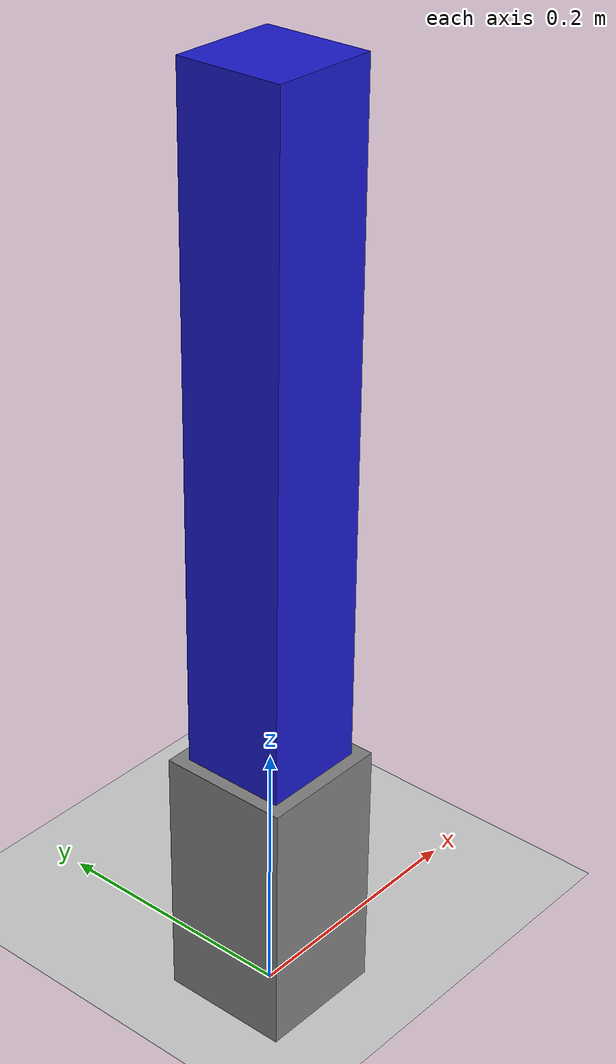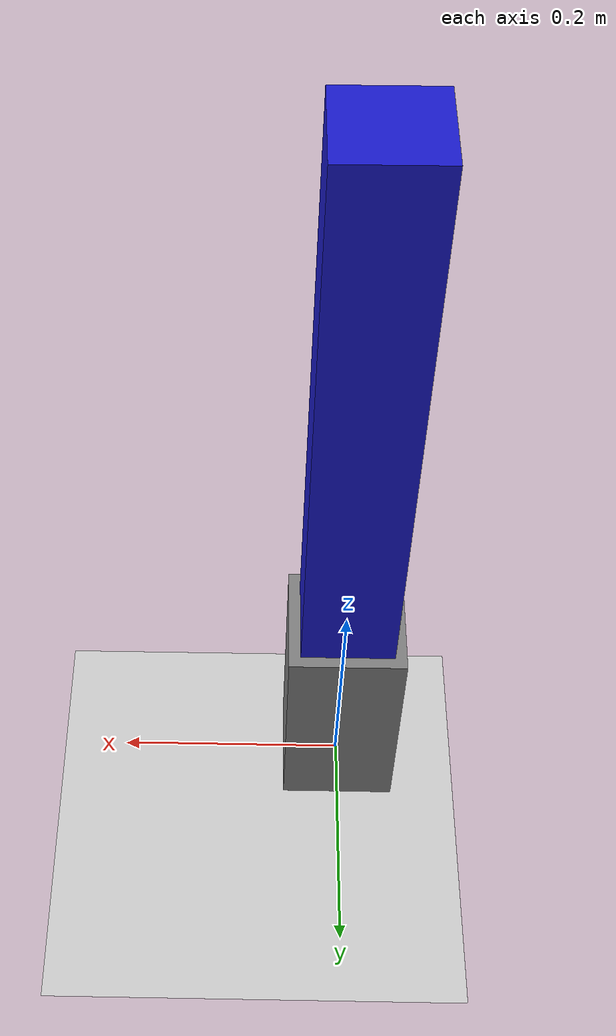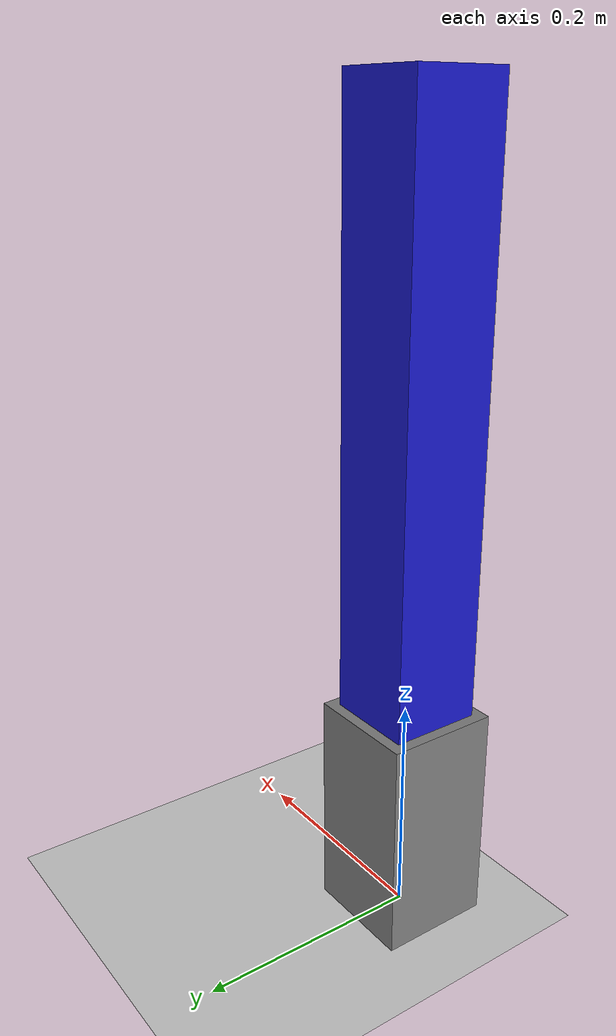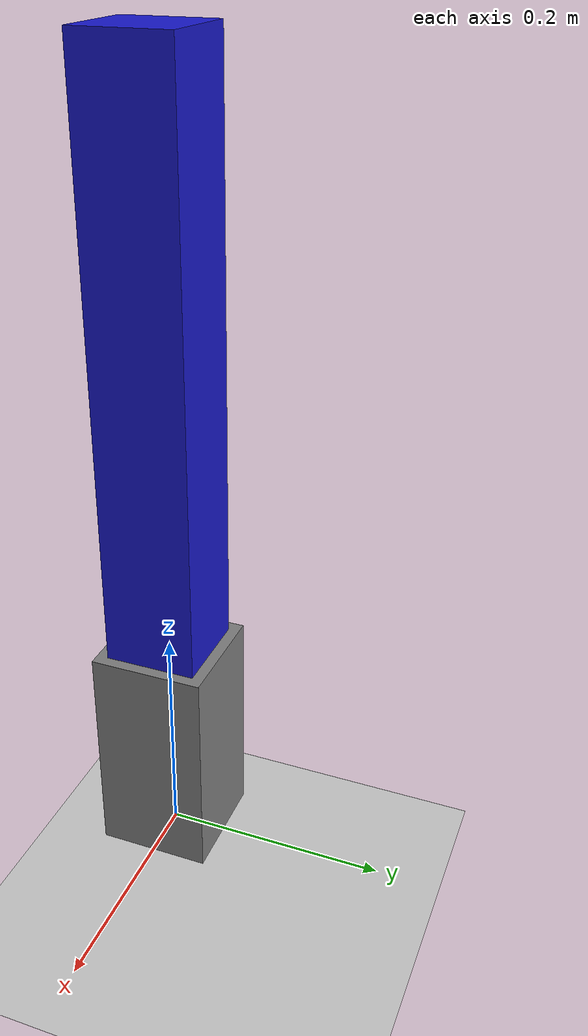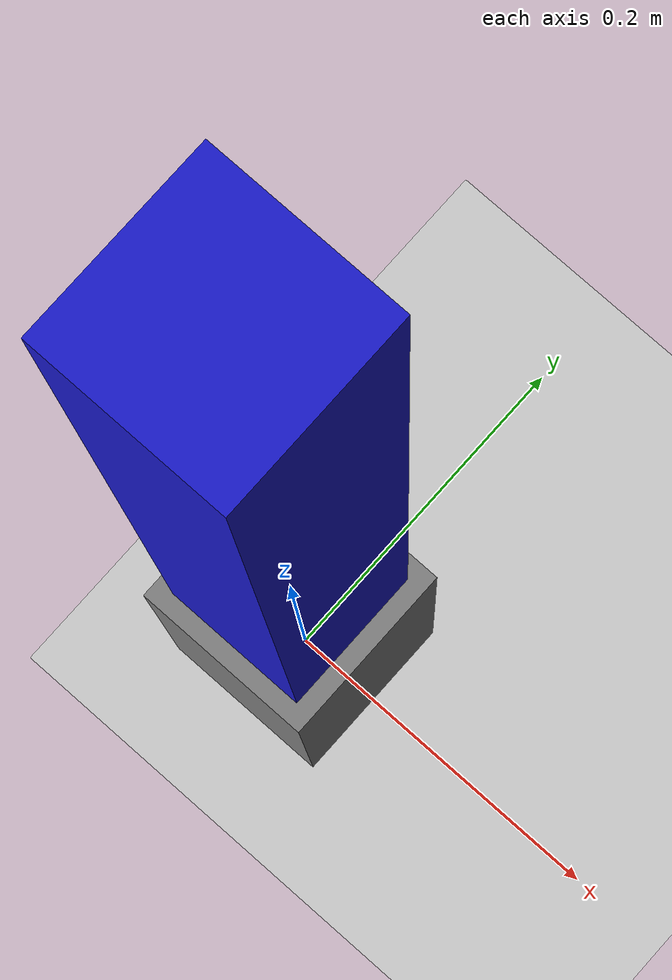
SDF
<?xml version="1.0" ?>
<sdf version="1.7">
  <world name="simple_arm_test_world">

    <plugin
        filename="gz-sim-physics-system"
        name="gz::sim::systems::Physics"></plugin>
    <plugin
        filename="gz-sim-user-commands-system"
        name="gz::sim::systems::UserCommands"></plugin>
    <plugin
        filename="gz-sim-scene-broadcaster-system"
        name="gz::sim::systems::SceneBroadcaster"></plugin>

    <light type="directional" name="sun">
      <cast_shadows>true</cast_shadows>
      <pose>0 0 10 0 0 0</pose>
      <diffuse>0.8 0.8 0.8 1</diffuse>
      <specular>0.2 0.2 0.2 1</specular>
      <direction>-0.5 0.1 -0.9</direction>
    </light>

    <model name="ground_plane">
      <static>true</static>
      <link name="link">
        <collision name="collision"><geometry><plane><normal>0 0 1</normal></plane></geometry></collision>
        <visual name="visual"><geometry><plane><normal>0 0 1</normal><size>10 10</size></plane></geometry>
          <material><ambient>0.8 0.8 0.8 1</ambient><diffuse>0.8 0.8 0.8 1</diffuse><specular>0.8 0.8 0.8 1</specular></material>
        </visual>
      </link>
    </model>

    <model name='simple_arm_test' canonical_link='base_link'>
      <pose>0 0 0.1 0 0 0</pose>

      <link name='base_link'>
        <inertial>
          <mass>10.0</mass>
          <inertia><ixx>0.1</ixx><iyy>0.1</iyy><izz>0.1</izz></inertia>
        </inertial>
        <pose>0 0 0 0 0 0</pose>
        <visual name='visual'><geometry><box><size>0.1 0.1 0.2</size></box></geometry><material><ambient>0.5 0.5 0.5 1</ambient><diffuse>0.5 0.5 0.5 1</diffuse></material></visual>
        <collision name='collision'><geometry><box><size>0.1 0.1 0.2</size></box></geometry></collision>
      </link>
      <link name='arm_link_1'>
        <pose relative_to="arm_joint_1">0 0 0.25 0 0 0</pose>
        <inertial>
          <mass>1.0</mass>
          <inertia><ixx>0.01</ixx><iyy>0.01</iyy><izz>0.01</izz></inertia>
        </inertial>
        <visual name='visual'><geometry><box><size>0.08 0.08 0.5</size></box></geometry><material><ambient>0.1 0.1 0.8 1</ambient><diffuse>0.1 0.1 0.8 1</diffuse></material></visual>
        <collision name='collision'><geometry><box><size>0.08 0.08 0.5</size></box></geometry></collision>
      </link>
      <joint name='arm_joint_1' type='revolute'>
        <pose relative_to='base_link'>0 0 0.1 0 0 0</pose>
        <parent>base_link</parent>
        <child>arm_link_1</child>
        <axis>
          <xyz>0 0 1</xyz>
          <limit><lower>-1.57</lower><upper>1.57</upper></limit>
          <dynamics><damping>0.1</damping></dynamics>
        </axis>
      </joint>

      <plugin
        filename="gz-sim-joint-controller-system"
        name="gz::sim::systems::JointController">
        <joint_name>arm_joint_1</joint_name>
      </plugin>

      <plugin filename="gz-sim-triggered-publisher-system" name="gz::sim::systems::TriggeredPublisher">
        <input type="gz.msgs.Int32" topic="/keyboard/keypress"><match field="data">81</match></input>
        <output type="gz.msgs.Double" topic="/model/simple_arm_test/joint/arm_joint_1/cmd_vel">data: 0.5</output>
      </plugin>

      <plugin filename="gz-sim-triggered-publisher-system" name="gz::sim::systems::TriggeredPublisher">
        <input type="gz.msgs.Int32" topic="/keyboard/keypress"><match field="data">65</match></input>
        <output type="gz.msgs.Double" topic="/model/simple_arm_test/joint/arm_joint_1/cmd_vel">data: -0.5</output>
      </plugin>
    </model>
  </world>
</sdf>
